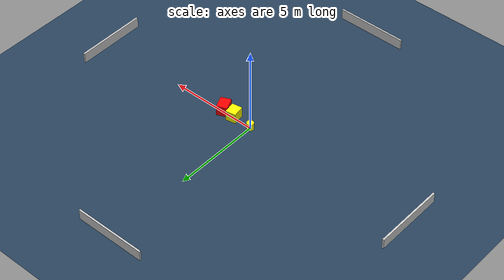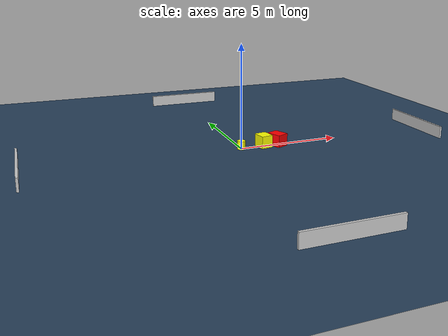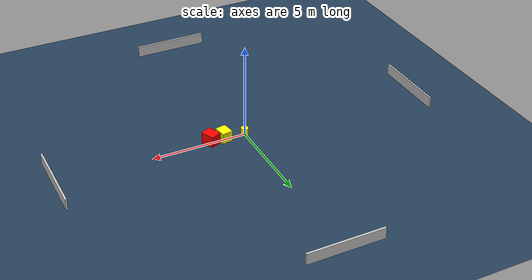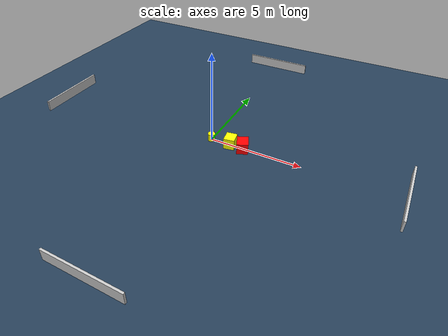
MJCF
<?xml version="1.0" ?>
<mujoco model="generated_environment">
  <option timestep="0.01" integrator="RK4" cone="elliptic"/>
  <default>
    <geom density="1"/>
  </default>
  <asset>
    <texture builtin="gradient" height="3072" name="skybox" rgb1="0.3 0.5 0.7" rgb2="0 0 0" type="skybox" width="512"/>
    <texture builtin="checker" height="300" name="groundplane" rgb1="0.2 0.3 0.4" rgb2="0.1 0.2 0.3" type="2d" width="300"/>
    <material name="groundplane" reflectance="0.2" texrepeat="5 5" texture="groundplane"/>
  </asset>
  <worldbody>
    <light dir="0 0 -1" directional="true" pos="0 0 1.5"/>
    <geom condim="3" friction="0.5 0.005 0.001" material="groundplane" name="floor" pos="0 0 0" size="0 0 0.05" type="plane"/>
    <body name="walls">
      <geom name="wall_1" condim="4" pos="-10.0 0.0 0.3" rgba="0.800000011920929 0.800000011920929 0.800000011920929 1.0" size="0.05 2.0 0.3" type="box"/>
      <geom name="wall_2" condim="4" pos="10.0 0.0 0.3" rgba="0.800000011920929 0.800000011920929 0.800000011920929 1.0" size="0.05 2.0 0.3" type="box"/>
      <geom name="wall_3" condim="4" pos="0.0 -10.0 0.3" rgba="0.800000011920929 0.800000011920929 0.800000011920929 1.0" size="2.0 0.05 0.3" type="box"/>
      <geom name="wall_4" condim="4" pos="0.0 10.0 0.3" rgba="0.800000011920929 0.800000011920929 0.800000011920929 1.0" size="2.0 0.05 0.3" type="box"/>
    </body>
    <body name="robot">
      <joint name="joint_x" type="slide" pos="0 0 0" axis="1 0 0"/>
      <joint name="joint_y" type="slide" pos="0 0 0" axis="0 1 0"/>
      <geom name="robot" type="cylinder" pos="0.0 0.0 0.2" size="0.2 0.2 0.0" mass="5.0" friction="1.0 0.005 0.0001" condim="4" rgba="1.0 1.0 0.0 1.0"/>
    </body>
    <body name="obstacle_1_movable">
      <geom name="obstacle_1_movable" condim="4" pos="1.1453937187713228 -0.03326832901482357 0.3" euler="0 0 189.24577128328505" friction="0.0 0.005 0.001" rgba="1.0 1.0 0.0 1.0" size="0.29114060856967583 0.33621729575137066 0.3" type="box" mass="0.1"/>
      <joint type="free"/>
    </body>
    <body name="obstacle_2_static">
      <geom name="obstacle_2_static" condim="4" pos="1.857706719256262 -0.064351380709977 0.3" euler="0 0 113.66827721727279" friction="0.0 0.005 0.001" rgba="1.0 0.0 0.0 1.0" size="0.37160725969411157 0.2984476850445317 0.3" type="box"/>
    </body>
  </worldbody>
  <actuator>
    <motor name="actuator_x" joint="joint_x" gear="1" ctrlrange="-1 1"/>
    <motor name="actuator_y" joint="joint_y" gear="1" ctrlrange="-1 1"/>
  </actuator>
</mujoco>
